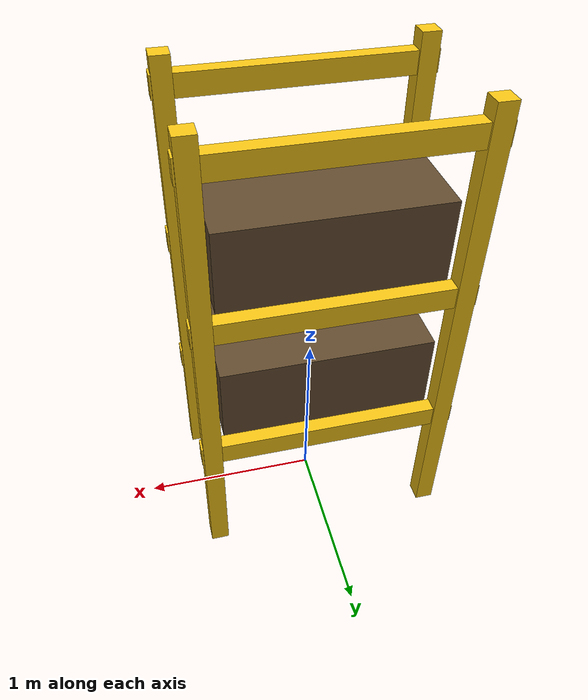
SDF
<?xml version="1.0" ?>
<sdf version="1.9">
  <model name="pallet_rack">
    <static>true</static>
    <link name="link">
      <collision name="collision">
        <pose>0 0 1.3 0 0 0</pose>
        <geometry><box><size>1.4 0.9 2.6</size></box></geometry>
      </collision>

      <!-- four yellow corner uprights -->
      <visual name="upright_fl">
        <pose>0.65 0.4 1.3 0 0 0</pose>
        <geometry><box><size>0.1 0.1 2.6</size></box></geometry>
        <material><ambient>0.85 0.68 0.05 1</ambient><diffuse>0.95 0.76 0.08 1</diffuse></material>
      </visual>
      <visual name="upright_fr">
        <pose>0.65 -0.4 1.3 0 0 0</pose>
        <geometry><box><size>0.1 0.1 2.6</size></box></geometry>
        <material><ambient>0.85 0.68 0.05 1</ambient><diffuse>0.95 0.76 0.08 1</diffuse></material>
      </visual>
      <visual name="upright_rl">
        <pose>-0.65 0.4 1.3 0 0 0</pose>
        <geometry><box><size>0.1 0.1 2.6</size></box></geometry>
        <material><ambient>0.85 0.68 0.05 1</ambient><diffuse>0.95 0.76 0.08 1</diffuse></material>
      </visual>
      <visual name="upright_rr">
        <pose>-0.65 -0.4 1.3 0 0 0</pose>
        <geometry><box><size>0.1 0.1 2.6</size></box></geometry>
        <material><ambient>0.85 0.68 0.05 1</ambient><diffuse>0.95 0.76 0.08 1</diffuse></material>
      </visual>

      <!-- yellow load beams, front and back, at three levels -->
      <visual name="beam_f_0">
        <pose>0 0.4 0.75 0 0 0</pose>
        <geometry><box><size>1.42 0.08 0.12</size></box></geometry>
        <material><ambient>0.85 0.68 0.05 1</ambient><diffuse>0.95 0.76 0.08 1</diffuse></material>
      </visual>
      <visual name="beam_r_0">
        <pose>0 -0.4 0.75 0 0 0</pose>
        <geometry><box><size>1.42 0.08 0.12</size></box></geometry>
        <material><ambient>0.85 0.68 0.05 1</ambient><diffuse>0.95 0.76 0.08 1</diffuse></material>
      </visual>
      <visual name="beam_f_1">
        <pose>0 0.4 1.6 0 0 0</pose>
        <geometry><box><size>1.42 0.08 0.12</size></box></geometry>
        <material><ambient>0.85 0.68 0.05 1</ambient><diffuse>0.95 0.76 0.08 1</diffuse></material>
      </visual>
      <visual name="beam_r_1">
        <pose>0 -0.4 1.6 0 0 0</pose>
        <geometry><box><size>1.42 0.08 0.12</size></box></geometry>
        <material><ambient>0.85 0.68 0.05 1</ambient><diffuse>0.95 0.76 0.08 1</diffuse></material>
      </visual>
      <visual name="beam_f_2">
        <pose>0 0.4 2.45 0 0 0</pose>
        <geometry><box><size>1.42 0.08 0.12</size></box></geometry>
        <material><ambient>0.85 0.68 0.05 1</ambient><diffuse>0.95 0.76 0.08 1</diffuse></material>
      </visual>
      <visual name="beam_r_2">
        <pose>0 -0.4 2.45 0 0 0</pose>
        <geometry><box><size>1.42 0.08 0.12</size></box></geometry>
        <material><ambient>0.85 0.68 0.05 1</ambient><diffuse>0.95 0.76 0.08 1</diffuse></material>
      </visual>

      <!-- palletised goods sitting on the lower two levels. Kept clear of the
           beams in z so no two surfaces share a boundary plane. -->
      <visual name="load_0">
        <pose>0 0 1.03 0 0 0</pose>
        <geometry><box><size>1.15 0.72 0.44</size></box></geometry>
        <material><ambient>0.34 0.26 0.16 1</ambient><diffuse>0.38 0.29 0.18 1</diffuse></material>
      </visual>
      <visual name="load_1">
        <pose>0 0 1.88 0 0 0</pose>
        <geometry><box><size>1.15 0.72 0.44</size></box></geometry>
        <material><ambient>0.34 0.26 0.16 1</ambient><diffuse>0.38 0.29 0.18 1</diffuse></material>
      </visual>
    </link>
  </model>
</sdf>
